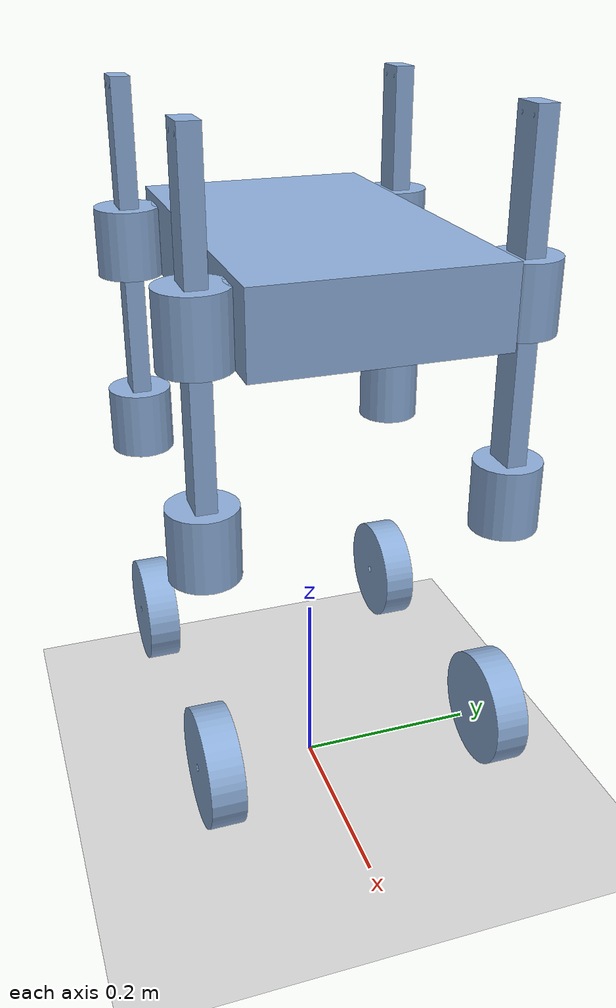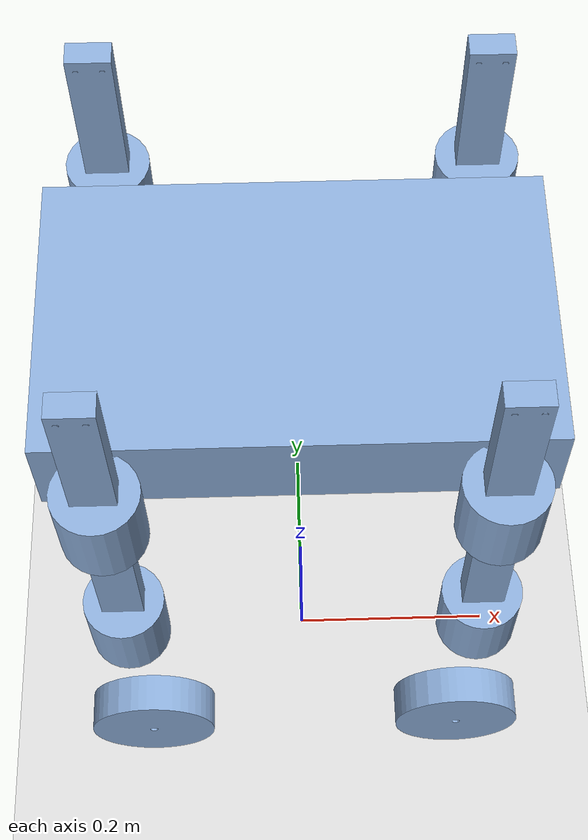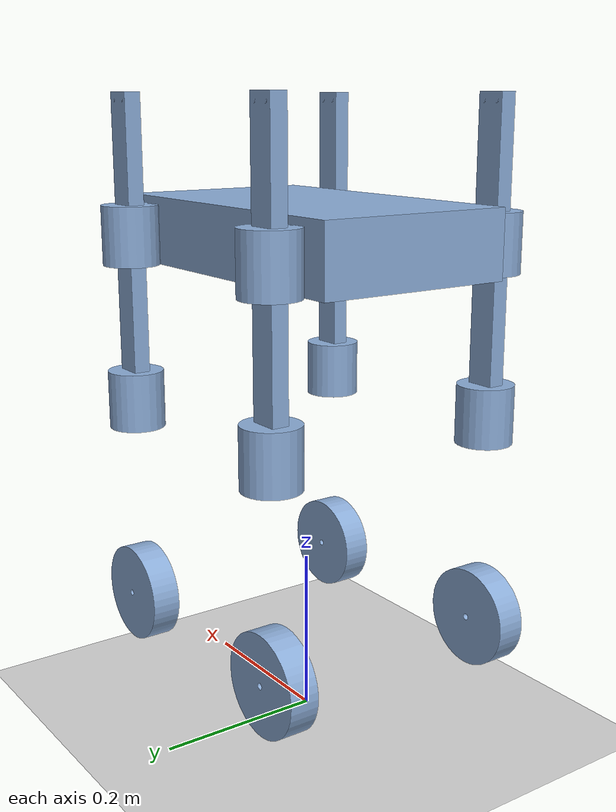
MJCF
<?xml version="1.0" encoding="utf-8"?>
<mujoco model="anymal_wl">
  <compiler angle="radian" coordinate="local" meshdir="meshes" autolimits="true"/>
  <option timestep="0.002" integrator="implicitfast"/>
  <default>
    <joint damping="0.1" armature="0.01"/>
    <geom contype="0" conaffinity="1" friction="1.0 0.005 0.0001"/>
  </default>
  <asset>
    <mesh name="catalog_brackets_leg_segment__length-200" file="catalog_brackets_leg_segment__length-200.stl" scale="0.001 0.001 0.001"/>
    <mesh name="catalog_brackets_leg_segment__length-220" file="catalog_brackets_leg_segment__length-220.stl" scale="0.001 0.001 0.001"/>
    <mesh name="catalog_chassis_quadruped_body__height-80__hip_spacing_x-300__hip_spacing_y-180__length-400__width-240" file="catalog_chassis_quadruped_body__height-80__hip_spacing_x-300__hip_spacing_y-180__length-400__width-240.stl" scale="0.001 0.001 0.001"/>
    <mesh name="catalog_joints_joint_t2__gearbox-planetary-9-1__motor-t-motor-r60-kv115" file="catalog_joints_joint_t2__gearbox-planetary-9-1__motor-t-motor-r60-kv115.stl" scale="0.001 0.001 0.001"/>
    <mesh name="catalog_wheels_wheel_simple__radius-60__width-35" file="catalog_wheels_wheel_simple__radius-60__width-35.stl" scale="0.001 0.001 0.001"/>
  </asset>
  <worldbody>
    <geom name="ground" type="plane" size="10 10 0.1" contype="1" conaffinity="1" rgba="0.85 0.85 0.85 1"/>
    <body name="base" pos="0 0 0.600">
      <freejoint name="root"/>
      <inertial pos="0.000000 0.000000 0.000000" mass="1.132107" diaginertia="6.037904e-3 1.569855e-2 2.052887e-2"/>
      <geom name="base_geom" type="mesh" mesh="catalog_chassis_quadruped_body__height-80__hip_spacing_x-300__hip_spacing_y-180__length-400__width-240" mass="0" rgba="0.55 0.68 0.85 1"/>
      <body name="FL_hip_roll_housing" pos="0.150000 0.090000 -0.040000">
        <joint name="FL_HIP_roll" type="hinge" range="-0.5000 0.5000" limited="true" axis="1.000000 0.000000 0.000000" pos="0 0 0" ref="0.000000"/>
        <inertial pos="0.000000 0.000000 0.000000" mass="0.203539" diaginertia="1.372533e-4 1.372533e-4 1.176457e-4"/>
        <geom name="FL_hip_roll_housing_geom" type="mesh" mesh="catalog_joints_joint_t2__gearbox-planetary-9-1__motor-t-motor-r60-kv115" mass="0" rgba="0.55 0.68 0.85 1"/>
        <body name="FL_hip_pitch_housing" pos="0.000000 0.060000 0.000000">
          <inertial pos="0.000000 0.000000 0.000000" mass="0.203539" diaginertia="1.372533e-4 1.372533e-4 1.176457e-4"/>
          <geom name="FL_hip_pitch_housing_geom" type="mesh" mesh="catalog_joints_joint_t2__gearbox-planetary-9-1__motor-t-motor-r60-kv115" mass="0" rgba="0.55 0.68 0.85 1"/>
          <body name="FL_upper_leg" pos="0.000000 0.000000 0.000000">
            <joint name="FL_HIP_pitch" type="hinge" range="-2.0000 1.5000" limited="true" axis="0.000000 1.000000 0.000000" pos="0 0 0" ref="-0.250000"/>
            <inertial pos="0.000000 0.000000 0.000000" mass="0.250000" diaginertia="8.583333e-4 8.583333e-4 5.000000e-5"/>
            <geom name="FL_upper_leg_geom" type="mesh" mesh="catalog_brackets_leg_segment__length-200" mass="0" rgba="0.55 0.68 0.85 1"/>
            <body name="FL_knee_housing" pos="0.000000 0.000000 -0.200000">
              <inertial pos="0.000000 0.000000 0.000000" mass="0.203539" diaginertia="1.372533e-4 1.372533e-4 1.176457e-4"/>
              <geom name="FL_knee_housing_geom" type="mesh" mesh="catalog_joints_joint_t2__gearbox-planetary-9-1__motor-t-motor-r60-kv115" mass="0" rgba="0.55 0.68 0.85 1"/>
              <body name="FL_lower_leg" pos="0.000000 0.000000 0.000000">
                <joint name="FL_KNEE_pitch" type="hinge" range="0.2000 2.8000" limited="true" axis="0.000000 1.000000 0.000000" pos="0 0 0" ref="1.500000"/>
                <inertial pos="0.000000 0.000000 0.000000" mass="0.200000" diaginertia="8.228667e-4 8.228667e-4 3.240000e-5"/>
                <geom name="FL_lower_leg_geom" type="mesh" mesh="catalog_brackets_leg_segment__length-220" mass="0" rgba="0.55 0.68 0.85 1"/>
                <body name="FL_wheel" pos="0.000000 0.000000 -0.220000">
                  <joint name="FL_WHEEL_drive" type="hinge" limited="false" damping="0.001" armature="0.0001" axis="0.000000 1.000000 0.000000" pos="0 0 0"/>
                  <inertial pos="0.000000 0.000000 0.000000" mass="0.387743" diaginertia="3.885509e-4 6.979376e-4 3.885509e-4"/>
                  <geom name="FL_wheel_geom" type="mesh" mesh="catalog_wheels_wheel_simple__radius-60__width-35" mass="0" rgba="0.55 0.68 0.85 1"/>
                </body>
              </body>
            </body>
          </body>
        </body>
      </body>
      <body name="FR_hip_roll_housing" pos="0.150000 -0.090000 -0.040000">
        <joint name="FR_HIP_roll" type="hinge" range="-0.5000 0.5000" limited="true" axis="1.000000 0.000000 0.000000" pos="0 0 0" ref="0.000000"/>
        <inertial pos="0.000000 0.000000 0.000000" mass="0.203539" diaginertia="1.372533e-4 1.372533e-4 1.176457e-4"/>
        <geom name="FR_hip_roll_housing_geom" type="mesh" mesh="catalog_joints_joint_t2__gearbox-planetary-9-1__motor-t-motor-r60-kv115" mass="0" rgba="0.55 0.68 0.85 1"/>
        <body name="FR_hip_pitch_housing" pos="0.000000 -0.060000 0.000000">
          <inertial pos="0.000000 0.000000 0.000000" mass="0.203539" diaginertia="1.372533e-4 1.372533e-4 1.176457e-4"/>
          <geom name="FR_hip_pitch_housing_geom" type="mesh" mesh="catalog_joints_joint_t2__gearbox-planetary-9-1__motor-t-motor-r60-kv115" mass="0" rgba="0.55 0.68 0.85 1"/>
          <body name="FR_upper_leg" pos="0.000000 0.000000 0.000000">
            <joint name="FR_HIP_pitch" type="hinge" range="-2.0000 1.5000" limited="true" axis="0.000000 1.000000 0.000000" pos="0 0 0" ref="-0.250000"/>
            <inertial pos="0.000000 0.000000 0.000000" mass="0.250000" diaginertia="8.583333e-4 8.583333e-4 5.000000e-5"/>
            <geom name="FR_upper_leg_geom" type="mesh" mesh="catalog_brackets_leg_segment__length-200" mass="0" rgba="0.55 0.68 0.85 1"/>
            <body name="FR_knee_housing" pos="0.000000 0.000000 -0.200000">
              <inertial pos="0.000000 0.000000 0.000000" mass="0.203539" diaginertia="1.372533e-4 1.372533e-4 1.176457e-4"/>
              <geom name="FR_knee_housing_geom" type="mesh" mesh="catalog_joints_joint_t2__gearbox-planetary-9-1__motor-t-motor-r60-kv115" mass="0" rgba="0.55 0.68 0.85 1"/>
              <body name="FR_lower_leg" pos="0.000000 0.000000 0.000000">
                <joint name="FR_KNEE_pitch" type="hinge" range="0.2000 2.8000" limited="true" axis="0.000000 1.000000 0.000000" pos="0 0 0" ref="1.500000"/>
                <inertial pos="0.000000 0.000000 0.000000" mass="0.200000" diaginertia="8.228667e-4 8.228667e-4 3.240000e-5"/>
                <geom name="FR_lower_leg_geom" type="mesh" mesh="catalog_brackets_leg_segment__length-220" mass="0" rgba="0.55 0.68 0.85 1"/>
                <body name="FR_wheel" pos="0.000000 0.000000 -0.220000">
                  <joint name="FR_WHEEL_drive" type="hinge" limited="false" damping="0.001" armature="0.0001" axis="0.000000 1.000000 0.000000" pos="0 0 0"/>
                  <inertial pos="0.000000 0.000000 0.000000" mass="0.387743" diaginertia="3.885509e-4 6.979376e-4 3.885509e-4"/>
                  <geom name="FR_wheel_geom" type="mesh" mesh="catalog_wheels_wheel_simple__radius-60__width-35" mass="0" rgba="0.55 0.68 0.85 1"/>
                </body>
              </body>
            </body>
          </body>
        </body>
      </body>
      <body name="RL_hip_roll_housing" pos="-0.150000 0.090000 -0.040000">
        <joint name="RL_HIP_roll" type="hinge" range="-0.5000 0.5000" limited="true" axis="1.000000 0.000000 0.000000" pos="0 0 0" ref="0.000000"/>
        <inertial pos="0.000000 0.000000 0.000000" mass="0.203539" diaginertia="1.372533e-4 1.372533e-4 1.176457e-4"/>
        <geom name="RL_hip_roll_housing_geom" type="mesh" mesh="catalog_joints_joint_t2__gearbox-planetary-9-1__motor-t-motor-r60-kv115" mass="0" rgba="0.55 0.68 0.85 1"/>
        <body name="RL_hip_pitch_housing" pos="0.000000 0.060000 0.000000">
          <inertial pos="0.000000 0.000000 0.000000" mass="0.203539" diaginertia="1.372533e-4 1.372533e-4 1.176457e-4"/>
          <geom name="RL_hip_pitch_housing_geom" type="mesh" mesh="catalog_joints_joint_t2__gearbox-planetary-9-1__motor-t-motor-r60-kv115" mass="0" rgba="0.55 0.68 0.85 1"/>
          <body name="RL_upper_leg" pos="0.000000 0.000000 0.000000">
            <joint name="RL_HIP_pitch" type="hinge" range="-2.0000 1.5000" limited="true" axis="0.000000 1.000000 0.000000" pos="0 0 0" ref="-0.250000"/>
            <inertial pos="0.000000 0.000000 0.000000" mass="0.250000" diaginertia="8.583333e-4 8.583333e-4 5.000000e-5"/>
            <geom name="RL_upper_leg_geom" type="mesh" mesh="catalog_brackets_leg_segment__length-200" mass="0" rgba="0.55 0.68 0.85 1"/>
            <body name="RL_knee_housing" pos="0.000000 0.000000 -0.200000">
              <inertial pos="0.000000 0.000000 0.000000" mass="0.203539" diaginertia="1.372533e-4 1.372533e-4 1.176457e-4"/>
              <geom name="RL_knee_housing_geom" type="mesh" mesh="catalog_joints_joint_t2__gearbox-planetary-9-1__motor-t-motor-r60-kv115" mass="0" rgba="0.55 0.68 0.85 1"/>
              <body name="RL_lower_leg" pos="0.000000 0.000000 0.000000">
                <joint name="RL_KNEE_pitch" type="hinge" range="0.2000 2.8000" limited="true" axis="0.000000 1.000000 0.000000" pos="0 0 0" ref="1.500000"/>
                <inertial pos="0.000000 0.000000 0.000000" mass="0.200000" diaginertia="8.228667e-4 8.228667e-4 3.240000e-5"/>
                <geom name="RL_lower_leg_geom" type="mesh" mesh="catalog_brackets_leg_segment__length-220" mass="0" rgba="0.55 0.68 0.85 1"/>
                <body name="RL_wheel" pos="0.000000 0.000000 -0.220000">
                  <joint name="RL_WHEEL_drive" type="hinge" limited="false" damping="0.001" armature="0.0001" axis="0.000000 1.000000 0.000000" pos="0 0 0"/>
                  <inertial pos="0.000000 0.000000 0.000000" mass="0.387743" diaginertia="3.885509e-4 6.979376e-4 3.885509e-4"/>
                  <geom name="RL_wheel_geom" type="mesh" mesh="catalog_wheels_wheel_simple__radius-60__width-35" mass="0" rgba="0.55 0.68 0.85 1"/>
                </body>
              </body>
            </body>
          </body>
        </body>
      </body>
      <body name="RR_hip_roll_housing" pos="-0.150000 -0.090000 -0.040000">
        <joint name="RR_HIP_roll" type="hinge" range="-0.5000 0.5000" limited="true" axis="1.000000 0.000000 0.000000" pos="0 0 0" ref="0.000000"/>
        <inertial pos="0.000000 0.000000 0.000000" mass="0.203539" diaginertia="1.372533e-4 1.372533e-4 1.176457e-4"/>
        <geom name="RR_hip_roll_housing_geom" type="mesh" mesh="catalog_joints_joint_t2__gearbox-planetary-9-1__motor-t-motor-r60-kv115" mass="0" rgba="0.55 0.68 0.85 1"/>
        <body name="RR_hip_pitch_housing" pos="0.000000 -0.060000 0.000000">
          <inertial pos="0.000000 0.000000 0.000000" mass="0.203539" diaginertia="1.372533e-4 1.372533e-4 1.176457e-4"/>
          <geom name="RR_hip_pitch_housing_geom" type="mesh" mesh="catalog_joints_joint_t2__gearbox-planetary-9-1__motor-t-motor-r60-kv115" mass="0" rgba="0.55 0.68 0.85 1"/>
          <body name="RR_upper_leg" pos="0.000000 0.000000 0.000000">
            <joint name="RR_HIP_pitch" type="hinge" range="-2.0000 1.5000" limited="true" axis="0.000000 1.000000 0.000000" pos="0 0 0" ref="-0.250000"/>
            <inertial pos="0.000000 0.000000 0.000000" mass="0.250000" diaginertia="8.583333e-4 8.583333e-4 5.000000e-5"/>
            <geom name="RR_upper_leg_geom" type="mesh" mesh="catalog_brackets_leg_segment__length-200" mass="0" rgba="0.55 0.68 0.85 1"/>
            <body name="RR_knee_housing" pos="0.000000 0.000000 -0.200000">
              <inertial pos="0.000000 0.000000 0.000000" mass="0.203539" diaginertia="1.372533e-4 1.372533e-4 1.176457e-4"/>
              <geom name="RR_knee_housing_geom" type="mesh" mesh="catalog_joints_joint_t2__gearbox-planetary-9-1__motor-t-motor-r60-kv115" mass="0" rgba="0.55 0.68 0.85 1"/>
              <body name="RR_lower_leg" pos="0.000000 0.000000 0.000000">
                <joint name="RR_KNEE_pitch" type="hinge" range="0.2000 2.8000" limited="true" axis="0.000000 1.000000 0.000000" pos="0 0 0" ref="1.500000"/>
                <inertial pos="0.000000 0.000000 0.000000" mass="0.200000" diaginertia="8.228667e-4 8.228667e-4 3.240000e-5"/>
                <geom name="RR_lower_leg_geom" type="mesh" mesh="catalog_brackets_leg_segment__length-220" mass="0" rgba="0.55 0.68 0.85 1"/>
                <body name="RR_wheel" pos="0.000000 0.000000 -0.220000">
                  <joint name="RR_WHEEL_drive" type="hinge" limited="false" damping="0.001" armature="0.0001" axis="0.000000 1.000000 0.000000" pos="0 0 0"/>
                  <inertial pos="0.000000 0.000000 0.000000" mass="0.387743" diaginertia="3.885509e-4 6.979376e-4 3.885509e-4"/>
                  <geom name="RR_wheel_geom" type="mesh" mesh="catalog_wheels_wheel_simple__radius-60__width-35" mass="0" rgba="0.55 0.68 0.85 1"/>
                </body>
              </body>
            </body>
          </body>
        </body>
      </body>
    </body>
  </worldbody>
  <actuator>
    <motor name="FL_HIP_roll" joint="FL_HIP_roll" ctrlrange="-18.000 18.000" gear="1"/>
    <motor name="FL_HIP_pitch" joint="FL_HIP_pitch" ctrlrange="-18.000 18.000" gear="1"/>
    <motor name="FL_KNEE_pitch" joint="FL_KNEE_pitch" ctrlrange="-25.000 25.000" gear="1"/>
    <motor name="FL_WHEEL_drive" joint="FL_WHEEL_drive" ctrlrange="-8.000 8.000" gear="1"/>
    <motor name="FR_HIP_roll" joint="FR_HIP_roll" ctrlrange="-18.000 18.000" gear="1"/>
    <motor name="FR_HIP_pitch" joint="FR_HIP_pitch" ctrlrange="-18.000 18.000" gear="1"/>
    <motor name="FR_KNEE_pitch" joint="FR_KNEE_pitch" ctrlrange="-25.000 25.000" gear="1"/>
    <motor name="FR_WHEEL_drive" joint="FR_WHEEL_drive" ctrlrange="-8.000 8.000" gear="1"/>
    <motor name="RL_HIP_roll" joint="RL_HIP_roll" ctrlrange="-18.000 18.000" gear="1"/>
    <motor name="RL_HIP_pitch" joint="RL_HIP_pitch" ctrlrange="-18.000 18.000" gear="1"/>
    <motor name="RL_KNEE_pitch" joint="RL_KNEE_pitch" ctrlrange="-25.000 25.000" gear="1"/>
    <motor name="RL_WHEEL_drive" joint="RL_WHEEL_drive" ctrlrange="-8.000 8.000" gear="1"/>
    <motor name="RR_HIP_roll" joint="RR_HIP_roll" ctrlrange="-18.000 18.000" gear="1"/>
    <motor name="RR_HIP_pitch" joint="RR_HIP_pitch" ctrlrange="-18.000 18.000" gear="1"/>
    <motor name="RR_KNEE_pitch" joint="RR_KNEE_pitch" ctrlrange="-25.000 25.000" gear="1"/>
    <motor name="RR_WHEEL_drive" joint="RR_WHEEL_drive" ctrlrange="-8.000 8.000" gear="1"/>
  </actuator>
</mujoco>
